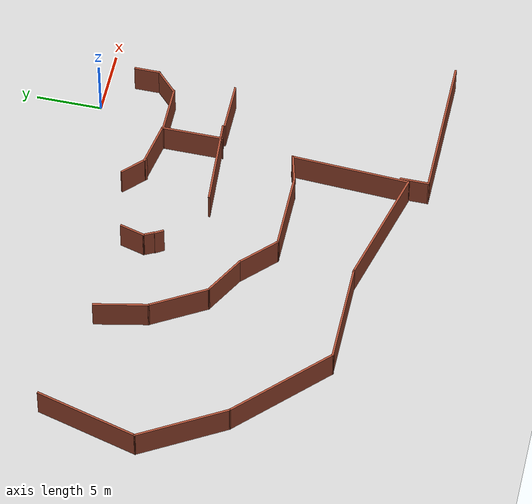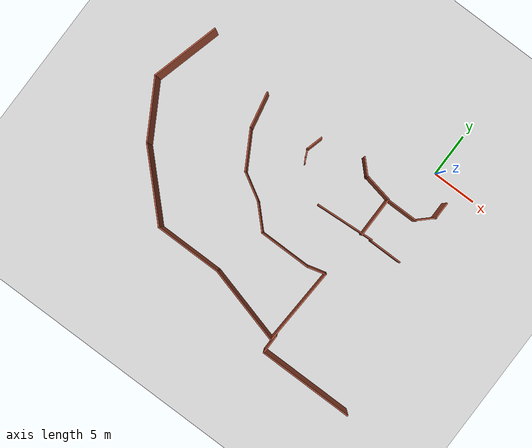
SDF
<sdf version="1.5">
 <world name="default">
  <model name="ground_plane">
   <static>1</static>
   <link name="link">
    <collision name="collision">
     <geometry><plane><normal>0 0 1</normal><size>100 100</size></plane></geometry>
     <surface><friction><ode><mu>100</mu><mu2>50</mu2></ode></friction></surface>
    </collision>
    <visual name="visual">
     <cast_shadows>0</cast_shadows>
     <geometry><plane><normal>0 0 1</normal><size>100 100</size></plane></geometry>
     <material>
      <script><uri>file://media/materials/scripts/gazebo.material</uri><name>Gazebo/Grey</name></script>
     </material>
    </visual>
   </link>
  </model>
  <model name="Untitled1111">
   <link name="Wall_118">
    <pose>-21.3942 -6.83376 0 0 0 -1.36735</pose>
    <visual name="Wall_118_Visual">
     <pose>0 0 1.25 0 -0 0</pose>
     <geometry><box><size>4.17727 0.15 2.5</size></box></geometry>
     <material>
      <script><uri>file://media/materials/scripts/gazebo.material</uri><name>Gazebo/Bricks</name></script>
      <ambient>1 1 1 1</ambient>
      <shader type="pixel"/>
     </material>
     <meta><layer>0</layer></meta>
    </visual>
    <collision name="Wall_118_Collision">
     <pose>0 0 1.25 0 -0 0</pose>
     <geometry><box><size>4.17727 0.15 2.5</size></box></geometry>
     <surface>
      <friction>
       <ode><mu>1</mu><mu2>1</mu2><fdir1>0 0 0</fdir1><slip1>0</slip1><slip2>0</slip2></ode>
       <torsional>
        <coefficient>1</coefficient>
        <patch_radius>0</patch_radius>
        <surface_radius>0</surface_radius>
        <use_patch_radius>1</use_patch_radius>
        <ode><slip>0</slip></ode>
       </torsional>
      </friction>
      <bounce><restitution_coefficient>0</restitution_coefficient><threshold>1e+06</threshold></bounce>
      <contact>
       <collide_without_contact>0</collide_without_contact>
       <collide_without_contact_bitmask>1</collide_without_contact_bitmask>
       <collide_bitmask>1</collide_bitmask>
       <ode>
        <soft_cfm>0</soft_cfm>
        <soft_erp>0.2</soft_erp>
        <kp>1e+13</kp>
        <kd>1</kd>
        <max_vel>0.01</max_vel>
        <min_depth>0</min_depth>
       </ode>
       <bullet>
        <split_impulse>1</split_impulse>
        <split_impulse_penetration_threshold>-0.01</split_impulse_penetration_threshold>
        <soft_cfm>0</soft_cfm>
        <soft_erp>0.2</soft_erp>
        <kp>1e+13</kp>
        <kd>1</kd>
       </bullet>
      </contact>
     </surface>
    </collision>
   </link>
   <link name="Wall_119">
    <pose>-19.8374 -10.7977 0 0 0 -1.0472</pose>
    <visual name="Wall_119_Visual">
     <pose>0 0 1.25 0 -0 0</pose>
     <geometry><box><size>4.75 0.15 2.5</size></box></geometry>
     <material>
      <script><uri>file://media/materials/scripts/gazebo.material</uri><name>Gazebo/Bricks</name></script>
      <ambient>1 1 1 1</ambient>
      <shader type="pixel"/>
     </material>
     <meta><layer>0</layer></meta>
    </visual>
    <collision name="Wall_119_Collision">
     <pose>0 0 1.25 0 -0 0</pose>
     <geometry><box><size>4.75 0.15 2.5</size></box></geometry>
     <surface>
      <friction>
       <ode><mu>1</mu><mu2>1</mu2><fdir1>0 0 0</fdir1><slip1>0</slip1><slip2>0</slip2></ode>
       <torsional>
        <coefficient>1</coefficient>
        <patch_radius>0</patch_radius>
        <surface_radius>0</surface_radius>
        <use_patch_radius>1</use_patch_radius>
        <ode><slip>0</slip></ode>
       </torsional>
      </friction>
      <bounce><restitution_coefficient>0</restitution_coefficient><threshold>1e+06</threshold></bounce>
      <contact>
       <collide_without_contact>0</collide_without_contact>
       <collide_without_contact_bitmask>1</collide_without_contact_bitmask>
       <collide_bitmask>1</collide_bitmask>
       <ode>
        <soft_cfm>0</soft_cfm>
        <soft_erp>0.2</soft_erp>
        <kp>1e+13</kp>
        <kd>1</kd>
        <max_vel>0.01</max_vel>
        <min_depth>0</min_depth>
       </ode>
       <bullet>
        <split_impulse>1</split_impulse>
        <split_impulse_penetration_threshold>-0.01</split_impulse_penetration_threshold>
        <soft_cfm>0</soft_cfm>
        <soft_erp>0.2</soft_erp>
        <kp>1e+13</kp>
        <kd>1</kd>
       </bullet>
      </contact>
     </surface>
    </collision>
   </link>
   <link name="Wall_120">
    <pose>-17.2368 -13.6271 0 0 0 -0.523599</pose>
    <visual name="Wall_120_Visual">
     <pose>0 0 1.25 0 -0 0</pose>
     <geometry><box><size>3.5 0.15 2.5</size></box></geometry>
     <material>
      <script><uri>file://media/materials/scripts/gazebo.material</uri><name>Gazebo/Bricks</name></script>
      <ambient>1 1 1 1</ambient>
      <shader type="pixel"/>
     </material>
     <meta><layer>0</layer></meta>
    </visual>
    <collision name="Wall_120_Collision">
     <pose>0 0 1.25 0 -0 0</pose>
     <geometry><box><size>3.5 0.15 2.5</size></box></geometry>
     <surface>
      <friction>
       <ode><mu>1</mu><mu2>1</mu2><fdir1>0 0 0</fdir1><slip1>0</slip1><slip2>0</slip2></ode>
       <torsional>
        <coefficient>1</coefficient>
        <patch_radius>0</patch_radius>
        <surface_radius>0</surface_radius>
        <use_patch_radius>1</use_patch_radius>
        <ode><slip>0</slip></ode>
       </torsional>
      </friction>
      <bounce><restitution_coefficient>0</restitution_coefficient><threshold>1e+06</threshold></bounce>
      <contact>
       <collide_without_contact>0</collide_without_contact>
       <collide_without_contact_bitmask>1</collide_without_contact_bitmask>
       <collide_bitmask>1</collide_bitmask>
       <ode>
        <soft_cfm>0</soft_cfm>
        <soft_erp>0.2</soft_erp>
        <kp>1e+13</kp>
        <kd>1</kd>
        <max_vel>0.01</max_vel>
        <min_depth>0</min_depth>
       </ode>
       <bullet>
        <split_impulse>1</split_impulse>
        <split_impulse_penetration_threshold>-0.01</split_impulse_penetration_threshold>
        <soft_cfm>0</soft_cfm>
        <soft_erp>0.2</soft_erp>
        <kp>1e+13</kp>
        <kd>1</kd>
       </bullet>
      </contact>
     </surface>
    </collision>
   </link>
   <link name="Wall_121">
    <pose>-14.6018 -15.649 0 0 0 -0.785398</pose>
    <visual name="Wall_121_Visual">
     <pose>0 0 1.25 0 -0 0</pose>
     <geometry><box><size>3.5 0.15 2.5</size></box></geometry>
     <material>
      <script><uri>file://media/materials/scripts/gazebo.material</uri><name>Gazebo/Bricks</name></script>
      <ambient>1 1 1 1</ambient>
      <shader type="pixel"/>
     </material>
     <meta><layer>0</layer></meta>
    </visual>
    <collision name="Wall_121_Collision">
     <pose>0 0 1.25 0 -0 0</pose>
     <geometry><box><size>3.5 0.15 2.5</size></box></geometry>
     <surface>
      <friction>
       <ode><mu>1</mu><mu2>1</mu2><fdir1>0 0 0</fdir1><slip1>0</slip1><slip2>0</slip2></ode>
       <torsional>
        <coefficient>1</coefficient>
        <patch_radius>0</patch_radius>
        <surface_radius>0</surface_radius>
        <use_patch_radius>1</use_patch_radius>
        <ode><slip>0</slip></ode>
       </torsional>
      </friction>
      <bounce><restitution_coefficient>0</restitution_coefficient><threshold>1e+06</threshold></bounce>
      <contact>
       <collide_without_contact>0</collide_without_contact>
       <collide_without_contact_bitmask>1</collide_without_contact_bitmask>
       <collide_bitmask>1</collide_bitmask>
       <ode>
        <soft_cfm>0</soft_cfm>
        <soft_erp>0.2</soft_erp>
        <kp>1e+13</kp>
        <kd>1</kd>
        <max_vel>0.01</max_vel>
        <min_depth>0</min_depth>
       </ode>
       <bullet>
        <split_impulse>1</split_impulse>
        <split_impulse_penetration_threshold>-0.01</split_impulse_penetration_threshold>
        <soft_cfm>0</soft_cfm>
        <soft_erp>0.2</soft_erp>
        <kp>1e+13</kp>
        <kd>1</kd>
       </bullet>
      </contact>
     </surface>
    </collision>
   </link>
   <link name="Wall_122">
    <pose>-10.4924 -16.8334 0 0 -0 0</pose>
    <visual name="Wall_122_Visual">
     <pose>0 0 1.25 0 -0 0</pose>
     <geometry><box><size>6 0.15 2.5</size></box></geometry>
     <material>
      <script><uri>file://media/materials/scripts/gazebo.material</uri><name>Gazebo/Bricks</name></script>
      <ambient>1 1 1 1</ambient>
      <shader type="pixel"/>
     </material>
     <meta><layer>0</layer></meta>
    </visual>
    <collision name="Wall_122_Collision">
     <pose>0 0 1.25 0 -0 0</pose>
     <geometry><box><size>6 0.15 2.5</size></box></geometry>
     <surface>
      <friction>
       <ode><mu>1</mu><mu2>1</mu2><fdir1>0 0 0</fdir1><slip1>0</slip1><slip2>0</slip2></ode>
       <torsional>
        <coefficient>1</coefficient>
        <patch_radius>0</patch_radius>
        <surface_radius>0</surface_radius>
        <use_patch_radius>1</use_patch_radius>
        <ode><slip>0</slip></ode>
       </torsional>
      </friction>
      <bounce><restitution_coefficient>0</restitution_coefficient><threshold>1e+06</threshold></bounce>
      <contact>
       <collide_without_contact>0</collide_without_contact>
       <collide_without_contact_bitmask>1</collide_without_contact_bitmask>
       <collide_bitmask>1</collide_bitmask>
       <ode>
        <soft_cfm>0</soft_cfm>
        <soft_erp>0.2</soft_erp>
        <kp>1e+13</kp>
        <kd>1</kd>
        <max_vel>0.01</max_vel>
        <min_depth>0</min_depth>
       </ode>
       <bullet>
        <split_impulse>1</split_impulse>
        <split_impulse_penetration_threshold>-0.01</split_impulse_penetration_threshold>
        <soft_cfm>0</soft_cfm>
        <soft_erp>0.2</soft_erp>
        <kp>1e+13</kp>
        <kd>1</kd>
       </bullet>
      </contact>
     </surface>
    </collision>
   </link>
   <link name="Wall_123">
    <pose>-6.55315 -16.5616 0 0 -0 0.261799</pose>
    <visual name="Wall_123_Visual">
     <pose>0 0 1.25 0 -0 0</pose>
     <geometry><box><size>2.25 0.15 2.5</size></box></geometry>
     <material>
      <script><uri>file://media/materials/scripts/gazebo.material</uri><name>Gazebo/Bricks</name></script>
      <ambient>1 1 1 1</ambient>
      <shader type="pixel"/>
     </material>
     <meta><layer>0</layer></meta>
    </visual>
    <collision name="Wall_123_Collision">
     <pose>0 0 1.25 0 -0 0</pose>
     <geometry><box><size>2.25 0.15 2.5</size></box></geometry>
     <surface>
      <friction>
       <ode><mu>1</mu><mu2>1</mu2><fdir1>0 0 0</fdir1><slip1>0</slip1><slip2>0</slip2></ode>
       <torsional>
        <coefficient>1</coefficient>
        <patch_radius>0</patch_radius>
        <surface_radius>0</surface_radius>
        <use_patch_radius>1</use_patch_radius>
        <ode><slip>0</slip></ode>
       </torsional>
      </friction>
      <bounce><restitution_coefficient>0</restitution_coefficient><threshold>1e+06</threshold></bounce>
      <contact>
       <collide_without_contact>0</collide_without_contact>
       <collide_without_contact_bitmask>1</collide_without_contact_bitmask>
       <collide_bitmask>1</collide_bitmask>
       <ode>
        <soft_cfm>0</soft_cfm>
        <soft_erp>0.2</soft_erp>
        <kp>1e+13</kp>
        <kd>1</kd>
        <max_vel>0.01</max_vel>
        <min_depth>0</min_depth>
       </ode>
       <bullet>
        <split_impulse>1</split_impulse>
        <split_impulse_penetration_threshold>-0.01</split_impulse_penetration_threshold>
        <soft_cfm>0</soft_cfm>
        <soft_erp>0.2</soft_erp>
        <kp>1e+13</kp>
        <kd>1</kd>
       </bullet>
      </contact>
     </surface>
    </collision>
   </link>
   <link name="Wall_145">
    <pose>-5.00108 -8.43338 0 0 0 -1.5708</pose>
    <visual name="Wall_145_Visual">
     <pose>0 0 1.25 0 -0 0</pose>
     <geometry><box><size>4.75 0.15 2.5</size></box></geometry>
     <material>
      <script><uri>file://media/materials/scripts/gazebo.material</uri><name>Gazebo/Bricks</name></script>
      <ambient>1 1 1 1</ambient>
      <shader type="pixel"/>
     </material>
     <meta><layer>0</layer></meta>
    </visual>
    <collision name="Wall_145_Collision">
     <pose>0 0 1.25 0 -0 0</pose>
     <geometry><box><size>4.75 0.15 2.5</size></box></geometry>
     <surface>
      <friction>
       <ode><mu>1</mu><mu2>1</mu2><fdir1>0 0 0</fdir1><slip1>0</slip1><slip2>0</slip2></ode>
       <torsional>
        <coefficient>1</coefficient>
        <patch_radius>0</patch_radius>
        <surface_radius>0</surface_radius>
        <use_patch_radius>1</use_patch_radius>
        <ode><slip>0</slip></ode>
       </torsional>
      </friction>
      <bounce><restitution_coefficient>0</restitution_coefficient><threshold>1e+06</threshold></bounce>
      <contact>
       <collide_without_contact>0</collide_without_contact>
       <collide_without_contact_bitmask>1</collide_without_contact_bitmask>
       <collide_bitmask>1</collide_bitmask>
       <ode>
        <soft_cfm>0</soft_cfm>
        <soft_erp>0.2</soft_erp>
        <kp>1e+13</kp>
        <kd>1</kd>
        <max_vel>0.01</max_vel>
        <min_depth>0</min_depth>
       </ode>
       <bullet>
        <split_impulse>1</split_impulse>
        <split_impulse_penetration_threshold>-0.01</split_impulse_penetration_threshold>
        <soft_cfm>0</soft_cfm>
        <soft_erp>0.2</soft_erp>
        <kp>1e+13</kp>
        <kd>1</kd>
       </bullet>
      </contact>
     </surface>
    </collision>
   </link>
   <link name="Wall_154">
    <pose>-31.1546 -6.63401 0 0 0 -1.8326</pose>
    <visual name="Wall_154_Visual">
     <pose>0 0 1.25 0 -0 0</pose>
     <geometry><box><size>8 0.15 2.5</size></box></geometry>
     <material>
      <script><uri>file://media/materials/scripts/gazebo.material</uri><name>Gazebo/Bricks</name></script>
      <ambient>1 1 1 1</ambient>
      <shader type="pixel"/>
     </material>
     <meta><layer>0</layer></meta>
    </visual>
    <collision name="Wall_154_Collision">
     <pose>0 0 1.25 0 -0 0</pose>
     <geometry><box><size>8 0.15 2.5</size></box></geometry>
     <surface>
      <friction>
       <ode><mu>1</mu><mu2>1</mu2><fdir1>0 0 0</fdir1><slip1>0</slip1><slip2>0</slip2></ode>
       <torsional>
        <coefficient>1</coefficient>
        <patch_radius>0</patch_radius>
        <surface_radius>0</surface_radius>
        <use_patch_radius>1</use_patch_radius>
        <ode><slip>0</slip></ode>
       </torsional>
      </friction>
      <bounce><restitution_coefficient>0</restitution_coefficient><threshold>1e+06</threshold></bounce>
      <contact>
       <collide_without_contact>0</collide_without_contact>
       <collide_without_contact_bitmask>1</collide_without_contact_bitmask>
       <collide_bitmask>1</collide_bitmask>
       <ode>
        <soft_cfm>0</soft_cfm>
        <soft_erp>0.2</soft_erp>
        <kp>1e+13</kp>
        <kd>1</kd>
        <max_vel>0.01</max_vel>
        <min_depth>0</min_depth>
       </ode>
       <bullet>
        <split_impulse>1</split_impulse>
        <split_impulse_penetration_threshold>-0.01</split_impulse_penetration_threshold>
        <soft_cfm>0</soft_cfm>
        <soft_erp>0.2</soft_erp>
        <kp>1e+13</kp>
        <kd>1</kd>
       </bullet>
      </contact>
     </surface>
    </collision>
   </link>
   <link name="Wall_155">
    <pose>-30.3954 -13.4997 0 0 0 -1.0472</pose>
    <visual name="Wall_155_Visual">
     <pose>0 0 1.25 0 -0 0</pose>
     <geometry><box><size>7.25 0.15 2.5</size></box></geometry>
     <material>
      <script><uri>file://media/materials/scripts/gazebo.material</uri><name>Gazebo/Bricks</name></script>
      <ambient>1 1 1 1</ambient>
      <shader type="pixel"/>
     </material>
     <meta><layer>0</layer></meta>
    </visual>
    <collision name="Wall_155_Collision">
     <pose>0 0 1.25 0 -0 0</pose>
     <geometry><box><size>7.25 0.15 2.5</size></box></geometry>
     <surface>
      <friction>
       <ode><mu>1</mu><mu2>1</mu2><fdir1>0 0 0</fdir1><slip1>0</slip1><slip2>0</slip2></ode>
       <torsional>
        <coefficient>1</coefficient>
        <patch_radius>0</patch_radius>
        <surface_radius>0</surface_radius>
        <use_patch_radius>1</use_patch_radius>
        <ode><slip>0</slip></ode>
       </torsional>
      </friction>
      <bounce><restitution_coefficient>0</restitution_coefficient><threshold>1e+06</threshold></bounce>
      <contact>
       <collide_without_contact>0</collide_without_contact>
       <collide_without_contact_bitmask>1</collide_without_contact_bitmask>
       <collide_bitmask>1</collide_bitmask>
       <ode>
        <soft_cfm>0</soft_cfm>
        <soft_erp>0.2</soft_erp>
        <kp>1e+13</kp>
        <kd>1</kd>
        <max_vel>0.01</max_vel>
        <min_depth>0</min_depth>
       </ode>
       <bullet>
        <split_impulse>1</split_impulse>
        <split_impulse_penetration_threshold>-0.01</split_impulse_penetration_threshold>
        <soft_cfm>0</soft_cfm>
        <soft_erp>0.2</soft_erp>
        <kp>1e+13</kp>
        <kd>1</kd>
       </bullet>
      </contact>
     </surface>
    </collision>
   </link>
   <link name="Wall_156">
    <pose>-25.4915 -19.703 0 0 0 -0.785398</pose>
    <visual name="Wall_156_Visual">
     <pose>0 0 1.25 0 -0 0</pose>
     <geometry><box><size>9 0.15 2.5</size></box></geometry>
     <material>
      <script><uri>file://media/materials/scripts/gazebo.material</uri><name>Gazebo/Bricks</name></script>
      <ambient>1 1 1 1</ambient>
      <shader type="pixel"/>
     </material>
     <meta><layer>0</layer></meta>
    </visual>
    <collision name="Wall_156_Collision">
     <pose>0 0 1.25 0 -0 0</pose>
     <geometry><box><size>9 0.15 2.5</size></box></geometry>
     <surface>
      <friction>
       <ode><mu>1</mu><mu2>1</mu2><fdir1>0 0 0</fdir1><slip1>0</slip1><slip2>0</slip2></ode>
       <torsional>
        <coefficient>1</coefficient>
        <patch_radius>0</patch_radius>
        <surface_radius>0</surface_radius>
        <use_patch_radius>1</use_patch_radius>
        <ode><slip>0</slip></ode>
       </torsional>
      </friction>
      <bounce><restitution_coefficient>0</restitution_coefficient><threshold>1e+06</threshold></bounce>
      <contact>
       <collide_without_contact>0</collide_without_contact>
       <collide_without_contact_bitmask>1</collide_without_contact_bitmask>
       <collide_bitmask>1</collide_bitmask>
       <ode>
        <soft_cfm>0</soft_cfm>
        <soft_erp>0.2</soft_erp>
        <kp>1e+13</kp>
        <kd>1</kd>
        <max_vel>0.01</max_vel>
        <min_depth>0</min_depth>
       </ode>
       <bullet>
        <split_impulse>1</split_impulse>
        <split_impulse_penetration_threshold>-0.01</split_impulse_penetration_threshold>
        <soft_cfm>0</soft_cfm>
        <soft_erp>0.2</soft_erp>
        <kp>1e+13</kp>
        <kd>1</kd>
       </bullet>
      </contact>
     </surface>
    </collision>
   </link>
   <link name="Wall_157">
    <pose>-18.5626 -22.8319 0 0 -0 0</pose>
    <visual name="Wall_157_Visual">
     <pose>0 0 1.25 0 -0 0</pose>
     <geometry><box><size>7.75 0.15 2.5</size></box></geometry>
     <material>
      <script><uri>file://media/materials/scripts/gazebo.material</uri><name>Gazebo/Bricks</name></script>
      <ambient>1 1 1 1</ambient>
      <shader type="pixel"/>
     </material>
     <meta><layer>0</layer></meta>
    </visual>
    <collision name="Wall_157_Collision">
     <pose>0 0 1.25 0 -0 0</pose>
     <geometry><box><size>7.75 0.15 2.5</size></box></geometry>
     <surface>
      <friction>
       <ode><mu>1</mu><mu2>1</mu2><fdir1>0 0 0</fdir1><slip1>0</slip1><slip2>0</slip2></ode>
       <torsional>
        <coefficient>1</coefficient>
        <patch_radius>0</patch_radius>
        <surface_radius>0</surface_radius>
        <use_patch_radius>1</use_patch_radius>
        <ode><slip>0</slip></ode>
       </torsional>
      </friction>
      <bounce><restitution_coefficient>0</restitution_coefficient><threshold>1e+06</threshold></bounce>
      <contact>
       <collide_without_contact>0</collide_without_contact>
       <collide_without_contact_bitmask>1</collide_without_contact_bitmask>
       <collide_bitmask>1</collide_bitmask>
       <ode>
        <soft_cfm>0</soft_cfm>
        <soft_erp>0.2</soft_erp>
        <kp>1e+13</kp>
        <kd>1</kd>
        <max_vel>0.01</max_vel>
        <min_depth>0</min_depth>
       </ode>
       <bullet>
        <split_impulse>1</split_impulse>
        <split_impulse_penetration_threshold>-0.01</split_impulse_penetration_threshold>
        <soft_cfm>0</soft_cfm>
        <soft_erp>0.2</soft_erp>
        <kp>1e+13</kp>
        <kd>1</kd>
       </bullet>
      </contact>
     </surface>
    </collision>
   </link>
   <link name="Wall_158">
    <pose>-10.3676 -24.0096 0 0 0 -0.261799</pose>
    <visual name="Wall_158_Visual">
     <pose>0 0 1.25 0 -0 0</pose>
     <geometry><box><size>9.25 0.15 2.5</size></box></geometry>
     <material>
      <script><uri>file://media/materials/scripts/gazebo.material</uri><name>Gazebo/Bricks</name></script>
      <ambient>1 1 1 1</ambient>
      <shader type="pixel"/>
     </material>
     <meta><layer>0</layer></meta>
    </visual>
    <collision name="Wall_158_Collision">
     <pose>0 0 1.25 0 -0 0</pose>
     <geometry><box><size>9.25 0.15 2.5</size></box></geometry>
     <surface>
      <friction>
       <ode><mu>1</mu><mu2>1</mu2><fdir1>0 0 0</fdir1><slip1>0</slip1><slip2>0</slip2></ode>
       <torsional>
        <coefficient>1</coefficient>
        <patch_radius>0</patch_radius>
        <surface_radius>0</surface_radius>
        <use_patch_radius>1</use_patch_radius>
        <ode><slip>0</slip></ode>
       </torsional>
      </friction>
      <bounce><restitution_coefficient>0</restitution_coefficient><threshold>1e+06</threshold></bounce>
      <contact>
       <collide_without_contact>0</collide_without_contact>
       <collide_without_contact_bitmask>1</collide_without_contact_bitmask>
       <collide_bitmask>1</collide_bitmask>
       <ode>
        <soft_cfm>0</soft_cfm>
        <soft_erp>0.2</soft_erp>
        <kp>1e+13</kp>
        <kd>1</kd>
        <max_vel>0.01</max_vel>
        <min_depth>0</min_depth>
       </ode>
       <bullet>
        <split_impulse>1</split_impulse>
        <split_impulse_penetration_threshold>-0.01</split_impulse_penetration_threshold>
        <soft_cfm>0</soft_cfm>
        <soft_erp>0.2</soft_erp>
        <kp>1e+13</kp>
        <kd>1</kd>
       </bullet>
      </contact>
     </surface>
    </collision>
   </link>
   <link name="Wall_159">
    <pose>-5.75578 -20.7385 0 0 -0 1.52209</pose>
    <visual name="Wall_159_Visual">
     <pose>0 0 1.25 0 -0 0</pose>
     <geometry><box><size>9.05788 0.15 2.5</size></box></geometry>
     <material>
      <script><uri>file://media/materials/scripts/gazebo.material</uri><name>Gazebo/Bricks</name></script>
      <ambient>1 1 1 1</ambient>
      <shader type="pixel"/>
     </material>
     <meta><layer>0</layer></meta>
    </visual>
    <collision name="Wall_159_Collision">
     <pose>0 0 1.25 0 -0 0</pose>
     <geometry><box><size>9.05788 0.15 2.5</size></box></geometry>
     <surface>
      <friction>
       <ode><mu>1</mu><mu2>1</mu2><fdir1>0 0 0</fdir1><slip1>0</slip1><slip2>0</slip2></ode>
       <torsional>
        <coefficient>1</coefficient>
        <patch_radius>0</patch_radius>
        <surface_radius>0</surface_radius>
        <use_patch_radius>1</use_patch_radius>
        <ode><slip>0</slip></ode>
       </torsional>
      </friction>
      <bounce><restitution_coefficient>0</restitution_coefficient><threshold>1e+06</threshold></bounce>
      <contact>
       <collide_without_contact>0</collide_without_contact>
       <collide_without_contact_bitmask>1</collide_without_contact_bitmask>
       <collide_bitmask>1</collide_bitmask>
       <ode>
        <soft_cfm>0</soft_cfm>
        <soft_erp>0.2</soft_erp>
        <kp>1e+13</kp>
        <kd>1</kd>
        <max_vel>0.01</max_vel>
        <min_depth>0</min_depth>
       </ode>
       <bullet>
        <split_impulse>1</split_impulse>
        <split_impulse_penetration_threshold>-0.01</split_impulse_penetration_threshold>
        <soft_cfm>0</soft_cfm>
        <soft_erp>0.2</soft_erp>
        <kp>1e+13</kp>
        <kd>1</kd>
       </bullet>
      </contact>
     </surface>
    </collision>
   </link>
   <link name="Wall_175">
    <pose>-0.358273 -26.6699 0 0 -0 3.14159</pose>
    <visual name="Wall_175_Visual">
     <pose>0 0 1.25 0 -0 0</pose>
     <geometry><box><size>11 0.15 2.5</size></box></geometry>
     <material>
      <script><uri>file://media/materials/scripts/gazebo.material</uri><name>Gazebo/Bricks</name></script>
      <ambient>1 1 1 1</ambient>
      <shader type="pixel"/>
     </material>
     <meta><layer>0</layer></meta>
    </visual>
    <collision name="Wall_175_Collision">
     <pose>0 0 1.25 0 -0 0</pose>
     <geometry><box><size>11 0.15 2.5</size></box></geometry>
     <surface>
      <friction>
       <ode><mu>1</mu><mu2>1</mu2><fdir1>0 0 0</fdir1><slip1>0</slip1><slip2>0</slip2></ode>
       <torsional>
        <coefficient>1</coefficient>
        <patch_radius>0</patch_radius>
        <surface_radius>0</surface_radius>
        <use_patch_radius>1</use_patch_radius>
        <ode><slip>0</slip></ode>
       </torsional>
      </friction>
      <bounce><restitution_coefficient>0</restitution_coefficient><threshold>1e+06</threshold></bounce>
      <contact>
       <collide_without_contact>0</collide_without_contact>
       <collide_without_contact_bitmask>1</collide_without_contact_bitmask>
       <collide_bitmask>1</collide_bitmask>
       <ode>
        <soft_cfm>0</soft_cfm>
        <soft_erp>0.2</soft_erp>
        <kp>1e+13</kp>
        <kd>1</kd>
        <max_vel>0.01</max_vel>
        <min_depth>0</min_depth>
       </ode>
       <bullet>
        <split_impulse>1</split_impulse>
        <split_impulse_penetration_threshold>-0.01</split_impulse_penetration_threshold>
        <soft_cfm>0</soft_cfm>
        <soft_erp>0.2</soft_erp>
        <kp>1e+13</kp>
        <kd>1</kd>
       </bullet>
      </contact>
     </surface>
    </collision>
   </link>
   <link name="Wall_176">
    <pose>-5.78327 -25.6199 0 0 -0 1.5708</pose>
    <visual name="Wall_176_Visual">
     <pose>0 0 1.25 0 -0 0</pose>
     <geometry><box><size>2.25 0.15 2.5</size></box></geometry>
     <material>
      <script><uri>file://media/materials/scripts/gazebo.material</uri><name>Gazebo/Bricks</name></script>
      <ambient>1 1 1 1</ambient>
      <shader type="pixel"/>
     </material>
     <meta><layer>0</layer></meta>
    </visual>
    <collision name="Wall_176_Collision">
     <pose>0 0 1.25 0 -0 0</pose>
     <geometry><box><size>2.25 0.15 2.5</size></box></geometry>
     <surface>
      <friction>
       <ode><mu>1</mu><mu2>1</mu2><fdir1>0 0 0</fdir1><slip1>0</slip1><slip2>0</slip2></ode>
       <torsional>
        <coefficient>1</coefficient>
        <patch_radius>0</patch_radius>
        <surface_radius>0</surface_radius>
        <use_patch_radius>1</use_patch_radius>
        <ode><slip>0</slip></ode>
       </torsional>
      </friction>
      <bounce><restitution_coefficient>0</restitution_coefficient><threshold>1e+06</threshold></bounce>
      <contact>
       <collide_without_contact>0</collide_without_contact>
       <collide_without_contact_bitmask>1</collide_without_contact_bitmask>
       <collide_bitmask>1</collide_bitmask>
       <ode>
        <soft_cfm>0</soft_cfm>
        <soft_erp>0.2</soft_erp>
        <kp>1e+13</kp>
        <kd>1</kd>
        <max_vel>0.01</max_vel>
        <min_depth>0</min_depth>
       </ode>
       <bullet>
        <split_impulse>1</split_impulse>
        <split_impulse_penetration_threshold>-0.01</split_impulse_penetration_threshold>
        <soft_cfm>0</soft_cfm>
        <soft_erp>0.2</soft_erp>
        <kp>1e+13</kp>
        <kd>1</kd>
       </bullet>
      </contact>
     </surface>
    </collision>
   </link>
   <link name="Wall_66">
    <pose>0.085102 -3.78028 0 0 0 -1.5708</pose>
    <visual name="Wall_66_Visual">
     <pose>0 0 1.25 0 -0 0</pose>
     <geometry><box><size>2 0.15 2.5</size></box></geometry>
     <material>
      <script><uri>file://media/materials/scripts/gazebo.material</uri><name>Gazebo/Bricks</name></script>
      <ambient>1 1 1 1</ambient>
      <shader type="pixel"/>
     </material>
     <meta><layer>0</layer></meta>
    </visual>
    <collision name="Wall_66_Collision">
     <pose>0 0 1.25 0 -0 0</pose>
     <geometry><box><size>2 0.15 2.5</size></box></geometry>
     <surface>
      <friction>
       <ode><mu>1</mu><mu2>1</mu2><fdir1>0 0 0</fdir1><slip1>0</slip1><slip2>0</slip2></ode>
       <torsional>
        <coefficient>1</coefficient>
        <patch_radius>0</patch_radius>
        <surface_radius>0</surface_radius>
        <use_patch_radius>1</use_patch_radius>
        <ode><slip>0</slip></ode>
       </torsional>
      </friction>
      <bounce><restitution_coefficient>0</restitution_coefficient><threshold>1e+06</threshold></bounce>
      <contact>
       <collide_without_contact>0</collide_without_contact>
       <collide_without_contact_bitmask>1</collide_without_contact_bitmask>
       <collide_bitmask>1</collide_bitmask>
       <ode>
        <soft_cfm>0</soft_cfm>
        <soft_erp>0.2</soft_erp>
        <kp>1e+13</kp>
        <kd>1</kd>
        <max_vel>0.01</max_vel>
        <min_depth>0</min_depth>
       </ode>
       <bullet>
        <split_impulse>1</split_impulse>
        <split_impulse_penetration_threshold>-0.01</split_impulse_penetration_threshold>
        <soft_cfm>0</soft_cfm>
        <soft_erp>0.2</soft_erp>
        <kp>1e+13</kp>
        <kd>1</kd>
       </bullet>
      </contact>
     </surface>
    </collision>
   </link>
   <link name="Wall_67">
    <pose>-0.657989 -5.41933 0 0 0 -2.37612</pose>
    <visual name="Wall_67_Visual">
     <pose>0 0 1.25 0 -0 0</pose>
     <geometry><box><size>2.21112 0.15 2.5</size></box></geometry>
     <material>
      <script><uri>file://media/materials/scripts/gazebo.material</uri><name>Gazebo/Bricks</name></script>
      <ambient>1 1 1 1</ambient>
      <shader type="pixel"/>
     </material>
     <meta><layer>0</layer></meta>
    </visual>
    <collision name="Wall_67_Collision">
     <pose>0 0 1.25 0 -0 0</pose>
     <geometry><box><size>2.21112 0.15 2.5</size></box></geometry>
     <surface>
      <friction>
       <ode><mu>1</mu><mu2>1</mu2><fdir1>0 0 0</fdir1><slip1>0</slip1><slip2>0</slip2></ode>
       <torsional>
        <coefficient>1</coefficient>
        <patch_radius>0</patch_radius>
        <surface_radius>0</surface_radius>
        <use_patch_radius>1</use_patch_radius>
        <ode><slip>0</slip></ode>
       </torsional>
      </friction>
      <bounce><restitution_coefficient>0</restitution_coefficient><threshold>1e+06</threshold></bounce>
      <contact>
       <collide_without_contact>0</collide_without_contact>
       <collide_without_contact_bitmask>1</collide_without_contact_bitmask>
       <collide_bitmask>1</collide_bitmask>
       <ode>
        <soft_cfm>0</soft_cfm>
        <soft_erp>0.2</soft_erp>
        <kp>1e+13</kp>
        <kd>1</kd>
        <max_vel>0.01</max_vel>
        <min_depth>0</min_depth>
       </ode>
       <bullet>
        <split_impulse>1</split_impulse>
        <split_impulse_penetration_threshold>-0.01</split_impulse_penetration_threshold>
        <soft_cfm>0</soft_cfm>
        <soft_erp>0.2</soft_erp>
        <kp>1e+13</kp>
        <kd>1</kd>
       </bullet>
      </contact>
     </surface>
    </collision>
   </link>
   <link name="Wall_68">
    <pose>-3.20108 -6.19456 0 0 -0 3.14159</pose>
    <visual name="Wall_68_Visual">
     <pose>0 0 1.25 0 -0 0</pose>
     <geometry><box><size>3.75 0.15 2.5</size></box></geometry>
     <material>
      <script><uri>file://media/materials/scripts/gazebo.material</uri><name>Gazebo/Bricks</name></script>
      <ambient>1 1 1 1</ambient>
      <shader type="pixel"/>
     </material>
     <meta><layer>0</layer></meta>
    </visual>
    <collision name="Wall_68_Collision">
     <pose>0 0 1.25 0 -0 0</pose>
     <geometry><box><size>3.75 0.15 2.5</size></box></geometry>
     <surface>
      <friction>
       <ode><mu>1</mu><mu2>1</mu2><fdir1>0 0 0</fdir1><slip1>0</slip1><slip2>0</slip2></ode>
       <torsional>
        <coefficient>1</coefficient>
        <patch_radius>0</patch_radius>
        <surface_radius>0</surface_radius>
        <use_patch_radius>1</use_patch_radius>
        <ode><slip>0</slip></ode>
       </torsional>
      </friction>
      <bounce><restitution_coefficient>0</restitution_coefficient><threshold>1e+06</threshold></bounce>
      <contact>
       <collide_without_contact>0</collide_without_contact>
       <collide_without_contact_bitmask>1</collide_without_contact_bitmask>
       <collide_bitmask>1</collide_bitmask>
       <ode>
        <soft_cfm>0</soft_cfm>
        <soft_erp>0.2</soft_erp>
        <kp>1e+13</kp>
        <kd>1</kd>
        <max_vel>0.01</max_vel>
        <min_depth>0</min_depth>
       </ode>
       <bullet>
        <split_impulse>1</split_impulse>
        <split_impulse_penetration_threshold>-0.01</split_impulse_penetration_threshold>
        <soft_cfm>0</soft_cfm>
        <soft_erp>0.2</soft_erp>
        <kp>1e+13</kp>
        <kd>1</kd>
       </bullet>
      </contact>
     </surface>
    </collision>
   </link>
   <link name="Wall_69">
    <pose>-6.6268 -5.82071 0 0 -0 2.95159</pose>
    <visual name="Wall_69_Visual">
     <pose>0 0 1.25 0 -0 0</pose>
     <geometry><box><size>3.46102 0.15 2.5</size></box></geometry>
     <material>
      <script><uri>file://media/materials/scripts/gazebo.material</uri><name>Gazebo/Bricks</name></script>
      <ambient>1 1 1 1</ambient>
      <shader type="pixel"/>
     </material>
     <meta><layer>0</layer></meta>
    </visual>
    <collision name="Wall_69_Collision">
     <pose>0 0 1.25 0 -0 0</pose>
     <geometry><box><size>3.46102 0.15 2.5</size></box></geometry>
     <surface>
      <friction>
       <ode><mu>1</mu><mu2>1</mu2><fdir1>0 0 0</fdir1><slip1>0</slip1><slip2>0</slip2></ode>
       <torsional>
        <coefficient>1</coefficient>
        <patch_radius>0</patch_radius>
        <surface_radius>0</surface_radius>
        <use_patch_radius>1</use_patch_radius>
        <ode><slip>0</slip></ode>
       </torsional>
      </friction>
      <bounce><restitution_coefficient>0</restitution_coefficient><threshold>1e+06</threshold></bounce>
      <contact>
       <collide_without_contact>0</collide_without_contact>
       <collide_without_contact_bitmask>1</collide_without_contact_bitmask>
       <collide_bitmask>1</collide_bitmask>
       <ode>
        <soft_cfm>0</soft_cfm>
        <soft_erp>0.2</soft_erp>
        <kp>1e+13</kp>
        <kd>1</kd>
        <max_vel>0.01</max_vel>
        <min_depth>0</min_depth>
       </ode>
       <bullet>
        <split_impulse>1</split_impulse>
        <split_impulse_penetration_threshold>-0.01</split_impulse_penetration_threshold>
        <soft_cfm>0</soft_cfm>
        <soft_erp>0.2</soft_erp>
        <kp>1e+13</kp>
        <kd>1</kd>
       </bullet>
      </contact>
     </surface>
    </collision>
   </link>
   <link name="Wall_70">
    <pose>-8.90245 -4.85811 0 0 -0 2.35619</pose>
    <visual name="Wall_70_Visual">
     <pose>0 0 1.25 0 -0 0</pose>
     <geometry><box><size>2.25 0.15 2.5</size></box></geometry>
     <material>
      <script><uri>file://media/materials/scripts/gazebo.material</uri><name>Gazebo/Bricks</name></script>
      <ambient>1 1 1 1</ambient>
      <shader type="pixel"/>
     </material>
     <meta><layer>0</layer></meta>
    </visual>
    <collision name="Wall_70_Collision">
     <pose>0 0 1.25 0 -0 0</pose>
     <geometry><box><size>2.25 0.15 2.5</size></box></geometry>
     <surface>
      <friction>
       <ode><mu>1</mu><mu2>1</mu2><fdir1>0 0 0</fdir1><slip1>0</slip1><slip2>0</slip2></ode>
       <torsional>
        <coefficient>1</coefficient>
        <patch_radius>0</patch_radius>
        <surface_radius>0</surface_radius>
        <use_patch_radius>1</use_patch_radius>
        <ode><slip>0</slip></ode>
       </torsional>
      </friction>
      <bounce><restitution_coefficient>0</restitution_coefficient><threshold>1e+06</threshold></bounce>
      <contact>
       <collide_without_contact>0</collide_without_contact>
       <collide_without_contact_bitmask>1</collide_without_contact_bitmask>
       <collide_bitmask>1</collide_bitmask>
       <ode>
        <soft_cfm>0</soft_cfm>
        <soft_erp>0.2</soft_erp>
        <kp>1e+13</kp>
        <kd>1</kd>
        <max_vel>0.01</max_vel>
        <min_depth>0</min_depth>
       </ode>
       <bullet>
        <split_impulse>1</split_impulse>
        <split_impulse_penetration_threshold>-0.01</split_impulse_penetration_threshold>
        <soft_cfm>0</soft_cfm>
        <soft_erp>0.2</soft_erp>
        <kp>1e+13</kp>
        <kd>1</kd>
       </bullet>
      </contact>
     </surface>
    </collision>
   </link>
   <link name="Wall_85">
    <pose>-14.7019 -6.12115 0 0 0 -1.8326</pose>
    <visual name="Wall_85_Visual">
     <pose>0 0 1.25 0 -0 0</pose>
     <geometry><box><size>2 0.15 2.5</size></box></geometry>
     <material>
      <script><uri>file://media/materials/scripts/gazebo.material</uri><name>Gazebo/Bricks</name></script>
      <ambient>1 1 1 1</ambient>
      <shader type="pixel"/>
     </material>
     <meta><layer>0</layer></meta>
    </visual>
    <collision name="Wall_85_Collision">
     <pose>0 0 1.25 0 -0 0</pose>
     <geometry><box><size>2 0.15 2.5</size></box></geometry>
     <surface>
      <friction>
       <ode><mu>1</mu><mu2>1</mu2><fdir1>0 0 0</fdir1><slip1>0</slip1><slip2>0</slip2></ode>
       <torsional>
        <coefficient>1</coefficient>
        <patch_radius>0</patch_radius>
        <surface_radius>0</surface_radius>
        <use_patch_radius>1</use_patch_radius>
        <ode><slip>0</slip></ode>
       </torsional>
      </friction>
      <bounce><restitution_coefficient>0</restitution_coefficient><threshold>1e+06</threshold></bounce>
      <contact>
       <collide_without_contact>0</collide_without_contact>
       <collide_without_contact_bitmask>1</collide_without_contact_bitmask>
       <collide_bitmask>1</collide_bitmask>
       <ode>
        <soft_cfm>0</soft_cfm>
        <soft_erp>0.2</soft_erp>
        <kp>1e+13</kp>
        <kd>1</kd>
        <max_vel>0.01</max_vel>
        <min_depth>0</min_depth>
       </ode>
       <bullet>
        <split_impulse>1</split_impulse>
        <split_impulse_penetration_threshold>-0.01</split_impulse_penetration_threshold>
        <soft_cfm>0</soft_cfm>
        <soft_erp>0.2</soft_erp>
        <kp>1e+13</kp>
        <kd>1</kd>
       </bullet>
      </contact>
     </surface>
    </collision>
   </link>
   <link name="Wall_86">
    <pose>-14.7578 -7.38322 0 0 0 -1.10884</pose>
    <visual name="Wall_86_Visual">
     <pose>0 0 1.25 0 -0 0</pose>
     <geometry><box><size>0.973489 0.15 2.5</size></box></geometry>
     <material>
      <script><uri>file://media/materials/scripts/gazebo.material</uri><name>Gazebo/Bricks</name></script>
      <ambient>1 1 1 1</ambient>
      <shader type="pixel"/>
     </material>
     <meta><layer>0</layer></meta>
    </visual>
    <collision name="Wall_86_Collision">
     <pose>0 0 1.25 0 -0 0</pose>
     <geometry><box><size>0.973489 0.15 2.5</size></box></geometry>
     <surface>
      <friction>
       <ode><mu>1</mu><mu2>1</mu2><fdir1>0 0 0</fdir1><slip1>0</slip1><slip2>0</slip2></ode>
       <torsional>
        <coefficient>1</coefficient>
        <patch_radius>0</patch_radius>
        <surface_radius>0</surface_radius>
        <use_patch_radius>1</use_patch_radius>
        <ode><slip>0</slip></ode>
       </torsional>
      </friction>
      <bounce><restitution_coefficient>0</restitution_coefficient><threshold>1e+06</threshold></bounce>
      <contact>
       <collide_without_contact>0</collide_without_contact>
       <collide_without_contact_bitmask>1</collide_without_contact_bitmask>
       <collide_bitmask>1</collide_bitmask>
       <ode>
        <soft_cfm>0</soft_cfm>
        <soft_erp>0.2</soft_erp>
        <kp>1e+13</kp>
        <kd>1</kd>
        <max_vel>0.01</max_vel>
        <min_depth>0</min_depth>
       </ode>
       <bullet>
        <split_impulse>1</split_impulse>
        <split_impulse_penetration_threshold>-0.01</split_impulse_penetration_threshold>
        <soft_cfm>0</soft_cfm>
        <soft_erp>0.2</soft_erp>
        <kp>1e+13</kp>
        <kd>1</kd>
       </bullet>
      </contact>
     </surface>
    </collision>
   </link>
   <link name="Wall_87">
    <pose>-14.4243 -8.07279 0 0 0 -1.0472</pose>
    <visual name="Wall_87_Visual">
     <pose>0 0 1.25 0 -0 0</pose>
     <geometry><box><size>0.75 0.15 2.5</size></box></geometry>
     <material>
      <script><uri>file://media/materials/scripts/gazebo.material</uri><name>Gazebo/Bricks</name></script>
      <ambient>1 1 1 1</ambient>
      <shader type="pixel"/>
     </material>
     <meta><layer>0</layer></meta>
    </visual>
    <collision name="Wall_87_Collision">
     <pose>0 0 1.25 0 -0 0</pose>
     <geometry><box><size>0.75 0.15 2.5</size></box></geometry>
     <surface>
      <friction>
       <ode><mu>1</mu><mu2>1</mu2><fdir1>0 0 0</fdir1><slip1>0</slip1><slip2>0</slip2></ode>
       <torsional>
        <coefficient>1</coefficient>
        <patch_radius>0</patch_radius>
        <surface_radius>0</surface_radius>
        <use_patch_radius>1</use_patch_radius>
        <ode><slip>0</slip></ode>
       </torsional>
      </friction>
      <bounce><restitution_coefficient>0</restitution_coefficient><threshold>1e+06</threshold></bounce>
      <contact>
       <collide_without_contact>0</collide_without_contact>
       <collide_without_contact_bitmask>1</collide_without_contact_bitmask>
       <collide_bitmask>1</collide_bitmask>
       <ode>
        <soft_cfm>0</soft_cfm>
        <soft_erp>0.2</soft_erp>
        <kp>1e+13</kp>
        <kd>1</kd>
        <max_vel>0.01</max_vel>
        <min_depth>0</min_depth>
       </ode>
       <bullet>
        <split_impulse>1</split_impulse>
        <split_impulse_penetration_threshold>-0.01</split_impulse_penetration_threshold>
        <soft_cfm>0</soft_cfm>
        <soft_erp>0.2</soft_erp>
        <kp>1e+13</kp>
        <kd>1</kd>
       </bullet>
      </contact>
     </surface>
    </collision>
   </link>
   <link name="Wall_89">
    <pose>-7.18947 -10.7633 0 0 -0 0.064767</pose>
    <visual name="Wall_89_Visual">
     <pose>0 0 1.25 0 -0 0</pose>
     <geometry><box><size>6.76699 0.15 2.5</size></box></geometry>
     <material>
      <script><uri>file://media/materials/scripts/gazebo.material</uri><name>Gazebo/Bricks</name></script>
      <ambient>1 1 1 1</ambient>
      <shader type="pixel"/>
     </material>
     <meta><layer>0</layer></meta>
    </visual>
    <collision name="Wall_89_Collision">
     <pose>0 0 1.25 0 -0 0</pose>
     <geometry><box><size>6.76699 0.15 2.5</size></box></geometry>
     <surface>
      <friction>
       <ode><mu>1</mu><mu2>1</mu2><fdir1>0 0 0</fdir1><slip1>0</slip1><slip2>0</slip2></ode>
       <torsional>
        <coefficient>1</coefficient>
        <patch_radius>0</patch_radius>
        <surface_radius>0</surface_radius>
        <use_patch_radius>1</use_patch_radius>
        <ode><slip>0</slip></ode>
       </torsional>
      </friction>
      <bounce><restitution_coefficient>0</restitution_coefficient><threshold>1e+06</threshold></bounce>
      <contact>
       <collide_without_contact>0</collide_without_contact>
       <collide_without_contact_bitmask>1</collide_without_contact_bitmask>
       <collide_bitmask>1</collide_bitmask>
       <ode>
        <soft_cfm>0</soft_cfm>
        <soft_erp>0.2</soft_erp>
        <kp>1e+13</kp>
        <kd>1</kd>
        <max_vel>0.01</max_vel>
        <min_depth>0</min_depth>
       </ode>
       <bullet>
        <split_impulse>1</split_impulse>
        <split_impulse_penetration_threshold>-0.01</split_impulse_penetration_threshold>
        <soft_cfm>0</soft_cfm>
        <soft_erp>0.2</soft_erp>
        <kp>1e+13</kp>
        <kd>1</kd>
       </bullet>
      </contact>
     </surface>
    </collision>
   </link>
   <link name="Wall_90">
    <pose>-1.96555 -10.6715 0 0 -0 0</pose>
    <visual name="Wall_90_Visual">
     <pose>0 0 1.25 0 -0 0</pose>
     <geometry><box><size>3.75 0.15 2.5</size></box></geometry>
     <material>
      <script><uri>file://media/materials/scripts/gazebo.material</uri><name>Gazebo/Bricks</name></script>
      <ambient>1 1 1 1</ambient>
      <shader type="pixel"/>
     </material>
     <meta><layer>0</layer></meta>
    </visual>
    <collision name="Wall_90_Collision">
     <pose>0 0 1.25 0 -0 0</pose>
     <geometry><box><size>3.75 0.15 2.5</size></box></geometry>
     <surface>
      <friction>
       <ode><mu>1</mu><mu2>1</mu2><fdir1>0 0 0</fdir1><slip1>0</slip1><slip2>0</slip2></ode>
       <torsional>
        <coefficient>1</coefficient>
        <patch_radius>0</patch_radius>
        <surface_radius>0</surface_radius>
        <use_patch_radius>1</use_patch_radius>
        <ode><slip>0</slip></ode>
       </torsional>
      </friction>
      <bounce><restitution_coefficient>0</restitution_coefficient><threshold>1e+06</threshold></bounce>
      <contact>
       <collide_without_contact>0</collide_without_contact>
       <collide_without_contact_bitmask>1</collide_without_contact_bitmask>
       <collide_bitmask>1</collide_bitmask>
       <ode>
        <soft_cfm>0</soft_cfm>
        <soft_erp>0.2</soft_erp>
        <kp>1e+13</kp>
        <kd>1</kd>
        <max_vel>0.01</max_vel>
        <min_depth>0</min_depth>
       </ode>
       <bullet>
        <split_impulse>1</split_impulse>
        <split_impulse_penetration_threshold>-0.01</split_impulse_penetration_threshold>
        <soft_cfm>0</soft_cfm>
        <soft_erp>0.2</soft_erp>
        <kp>1e+13</kp>
        <kd>1</kd>
       </bullet>
      </contact>
     </surface>
    </collision>
   </link>
   <static>1</static>
   <pose>2.40305 0.669162 0 0 -0 0</pose>
  </model>
 </world>
</sdf>
